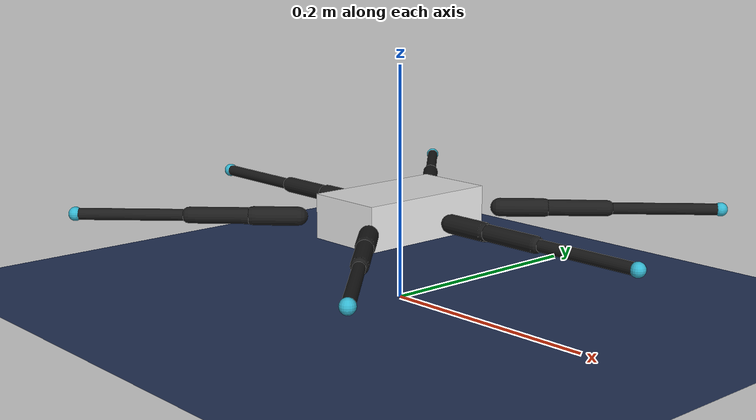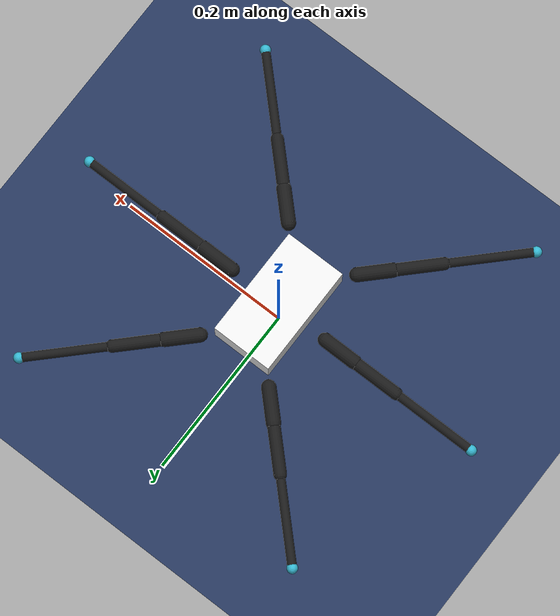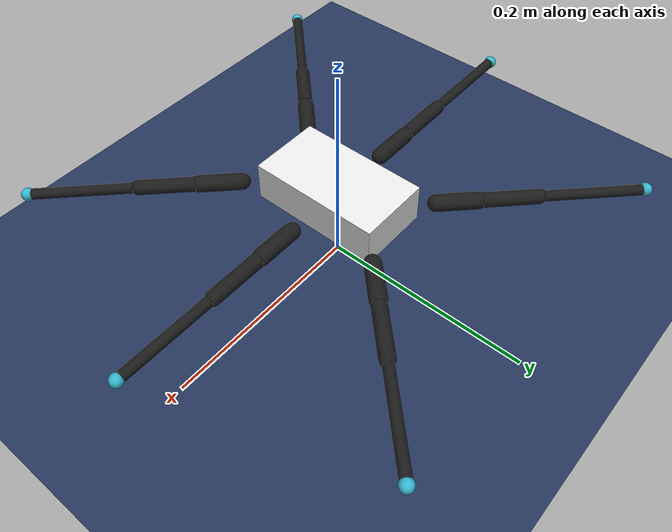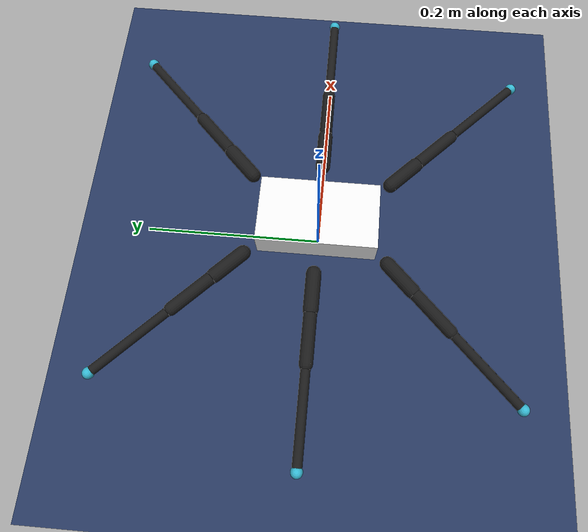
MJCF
<mujoco model="hexapod">
  <compiler angle="radian" meshdir="stl" autolimits="true"/>
  <option timestep="0.002" iterations="10" solver="Newton" cone="elliptic" integrator="implicitfast">
    <flag eulerdamp="disable"/>
  </option>

  <default>
    <geom solref="0.01 1" solimp="0.9 0.95 0.001"/>
  </default>

  <visual>
    <headlight diffuse="0.6 0.6 0.6" ambient="0.3 0.3 0.3"/>
    <global azimuth="120" elevation="-20"/>
  </visual>

  <asset>
    <texture name="grid" type="2d" builtin="checker" rgb1="0.18 0.26 0.42" rgb2="0.10 0.15 0.28"
             width="512" height="512"/>
    <material name="grid" texture="grid" texuniform="true" texrepeat="14 14" reflectance="0.35"/>
  </asset>

  <worldbody>
    <light pos="0 0 2" dir="0 0 -1" diffuse="0.8 0.8 0.8"/>
    <geom name="ground" type="plane" material="grid" size="5 5 0.1"
          condim="3" friction="1.0 0.02 0.001" contype="1" conaffinity="6"/>

    <body name="base" pos="0 0 0.075">
      <freejoint name="root"/>
      <inertial pos="0 0 0" mass="0.218" diaginertia="5.344e-04 3.123e-04 8.173e-04"/>
      <geom name="chassis" type="box" size="0.035 0.063 0.019" rgba="0.9 0.9 0.9 1"
            contype="4" conaffinity="1"/>
      <site name="imu" pos="0 0 0" size="0.005"/>
      <body name="coxa_0" pos="0.04482 0.07482 0" euler="0 0 0.785398">
        <joint name="coxa_0" type="hinge" axis="0 0 1" range="-0.55 0.55"
               damping="0.02" frictionloss="0.005" armature="0.003"/>
        <inertial pos="0.01900 0 0" mass="0.01" diaginertia="6.667e-07 1.537e-06 1.537e-06"/>
        <geom name="link_coxa_0" type="capsule" fromto="0 0 0 0.03800 0 0" size="0.008"
              rgba="0.1 0.1 0.1 1" contype="4" conaffinity="1"/>
        <body name="femur_0" pos="0.03800 0 0">
          <joint name="femur_0" type="hinge" axis="0 -1 0" range="-1.571 1.571"
                 damping="0.02" frictionloss="0.005" armature="0.003"/>
          <inertial pos="0.02703 0 0" mass="0.042" diaginertia="1.575e-06 1.102e-05 1.102e-05"/>
          <geom name="link_femur_0" type="capsule" fromto="0 0 0 0.05406 0 0" size="0.007"
                rgba="0.1 0.1 0.1 1" contype="4" conaffinity="1"/>
          <body name="tibia_0" pos="0.05406 0 0">
            <joint name="tibia_0" type="hinge" axis="0 -1 0" range="-2.6 2.6"
                   damping="0.02" frictionloss="0.005" armature="0.003"/>
            <inertial pos="0.04850 0 0" mass="0.025" diaginertia="6.000e-07 1.990e-05 1.990e-05"/>
            <geom name="link_tibia_0" type="capsule" fromto="0 0 0 0.09700 0 0" size="0.005"
                  rgba="0.1 0.1 0.1 1" contype="4" conaffinity="1"/>
            <geom name="foot_0" type="sphere" pos="0.09700 0 0" size="0.006"
                  rgba="0.2 0.7 0.8 1" condim="3" friction="2.0 0.02 0.001" priority="1"
                  contype="2" conaffinity="1"/>
            <site name="foot_0" pos="0.09700 0 0" size="0.004"/>
          </body>
        </body>
      </body>
      <body name="coxa_1" pos="0.06103 0.00000 0" euler="0 0 0.000000">
        <joint name="coxa_1" type="hinge" axis="0 0 1" range="-0.55 0.55"
               damping="0.02" frictionloss="0.005" armature="0.003"/>
        <inertial pos="0.01900 0 0" mass="0.01" diaginertia="6.667e-07 1.537e-06 1.537e-06"/>
        <geom name="link_coxa_1" type="capsule" fromto="0 0 0 0.03800 0 0" size="0.008"
              rgba="0.1 0.1 0.1 1" contype="4" conaffinity="1"/>
        <body name="femur_1" pos="0.03800 0 0">
          <joint name="femur_1" type="hinge" axis="0 -1 0" range="-1.571 1.571"
                 damping="0.02" frictionloss="0.005" armature="0.003"/>
          <inertial pos="0.02703 0 0" mass="0.042" diaginertia="1.575e-06 1.102e-05 1.102e-05"/>
          <geom name="link_femur_1" type="capsule" fromto="0 0 0 0.05406 0 0" size="0.007"
                rgba="0.1 0.1 0.1 1" contype="4" conaffinity="1"/>
          <body name="tibia_1" pos="0.05406 0 0">
            <joint name="tibia_1" type="hinge" axis="0 -1 0" range="-2.6 2.6"
                   damping="0.02" frictionloss="0.005" armature="0.003"/>
            <inertial pos="0.04850 0 0" mass="0.025" diaginertia="6.000e-07 1.990e-05 1.990e-05"/>
            <geom name="link_tibia_1" type="capsule" fromto="0 0 0 0.09700 0 0" size="0.005"
                  rgba="0.1 0.1 0.1 1" contype="4" conaffinity="1"/>
            <geom name="foot_1" type="sphere" pos="0.09700 0 0" size="0.006"
                  rgba="0.2 0.7 0.8 1" condim="3" friction="2.0 0.02 0.001" priority="1"
                  contype="2" conaffinity="1"/>
            <site name="foot_1" pos="0.09700 0 0" size="0.004"/>
          </body>
        </body>
      </body>
      <body name="coxa_2" pos="0.04482 -0.07482 0" euler="0 0 -0.785398">
        <joint name="coxa_2" type="hinge" axis="0 0 1" range="-0.55 0.55"
               damping="0.02" frictionloss="0.005" armature="0.003"/>
        <inertial pos="0.01900 0 0" mass="0.01" diaginertia="6.667e-07 1.537e-06 1.537e-06"/>
        <geom name="link_coxa_2" type="capsule" fromto="0 0 0 0.03800 0 0" size="0.008"
              rgba="0.1 0.1 0.1 1" contype="4" conaffinity="1"/>
        <body name="femur_2" pos="0.03800 0 0">
          <joint name="femur_2" type="hinge" axis="0 -1 0" range="-1.571 1.571"
                 damping="0.02" frictionloss="0.005" armature="0.003"/>
          <inertial pos="0.02703 0 0" mass="0.042" diaginertia="1.575e-06 1.102e-05 1.102e-05"/>
          <geom name="link_femur_2" type="capsule" fromto="0 0 0 0.05406 0 0" size="0.007"
                rgba="0.1 0.1 0.1 1" contype="4" conaffinity="1"/>
          <body name="tibia_2" pos="0.05406 0 0">
            <joint name="tibia_2" type="hinge" axis="0 -1 0" range="-2.6 2.6"
                   damping="0.02" frictionloss="0.005" armature="0.003"/>
            <inertial pos="0.04850 0 0" mass="0.025" diaginertia="6.000e-07 1.990e-05 1.990e-05"/>
            <geom name="link_tibia_2" type="capsule" fromto="0 0 0 0.09700 0 0" size="0.005"
                  rgba="0.1 0.1 0.1 1" contype="4" conaffinity="1"/>
            <geom name="foot_2" type="sphere" pos="0.09700 0 0" size="0.006"
                  rgba="0.2 0.7 0.8 1" condim="3" friction="2.0 0.02 0.001" priority="1"
                  contype="2" conaffinity="1"/>
            <site name="foot_2" pos="0.09700 0 0" size="0.004"/>
          </body>
        </body>
      </body>
      <body name="coxa_3" pos="-0.04482 0.07482 0" euler="0 0 -3.926991">
        <joint name="coxa_3" type="hinge" axis="0 0 1" range="-0.55 0.55"
               damping="0.02" frictionloss="0.005" armature="0.003"/>
        <inertial pos="0.01900 0 0" mass="0.01" diaginertia="6.667e-07 1.537e-06 1.537e-06"/>
        <geom name="link_coxa_3" type="capsule" fromto="0 0 0 0.03800 0 0" size="0.008"
              rgba="0.1 0.1 0.1 1" contype="4" conaffinity="1"/>
        <body name="femur_3" pos="0.03800 0 0">
          <joint name="femur_3" type="hinge" axis="0 -1 0" range="-1.571 1.571"
                 damping="0.02" frictionloss="0.005" armature="0.003"/>
          <inertial pos="0.02703 0 0" mass="0.042" diaginertia="1.575e-06 1.102e-05 1.102e-05"/>
          <geom name="link_femur_3" type="capsule" fromto="0 0 0 0.05406 0 0" size="0.007"
                rgba="0.1 0.1 0.1 1" contype="4" conaffinity="1"/>
          <body name="tibia_3" pos="0.05406 0 0">
            <joint name="tibia_3" type="hinge" axis="0 -1 0" range="-2.6 2.6"
                   damping="0.02" frictionloss="0.005" armature="0.003"/>
            <inertial pos="0.04850 0 0" mass="0.025" diaginertia="6.000e-07 1.990e-05 1.990e-05"/>
            <geom name="link_tibia_3" type="capsule" fromto="0 0 0 0.09700 0 0" size="0.005"
                  rgba="0.1 0.1 0.1 1" contype="4" conaffinity="1"/>
            <geom name="foot_3" type="sphere" pos="0.09700 0 0" size="0.006"
                  rgba="0.2 0.7 0.8 1" condim="3" friction="2.0 0.02 0.001" priority="1"
                  contype="2" conaffinity="1"/>
            <site name="foot_3" pos="0.09700 0 0" size="0.004"/>
          </body>
        </body>
      </body>
      <body name="coxa_4" pos="-0.06103 0.00000 0" euler="0 0 -3.141593">
        <joint name="coxa_4" type="hinge" axis="0 0 1" range="-0.55 0.55"
               damping="0.02" frictionloss="0.005" armature="0.003"/>
        <inertial pos="0.01900 0 0" mass="0.01" diaginertia="6.667e-07 1.537e-06 1.537e-06"/>
        <geom name="link_coxa_4" type="capsule" fromto="0 0 0 0.03800 0 0" size="0.008"
              rgba="0.1 0.1 0.1 1" contype="4" conaffinity="1"/>
        <body name="femur_4" pos="0.03800 0 0">
          <joint name="femur_4" type="hinge" axis="0 -1 0" range="-1.571 1.571"
                 damping="0.02" frictionloss="0.005" armature="0.003"/>
          <inertial pos="0.02703 0 0" mass="0.042" diaginertia="1.575e-06 1.102e-05 1.102e-05"/>
          <geom name="link_femur_4" type="capsule" fromto="0 0 0 0.05406 0 0" size="0.007"
                rgba="0.1 0.1 0.1 1" contype="4" conaffinity="1"/>
          <body name="tibia_4" pos="0.05406 0 0">
            <joint name="tibia_4" type="hinge" axis="0 -1 0" range="-2.6 2.6"
                   damping="0.02" frictionloss="0.005" armature="0.003"/>
            <inertial pos="0.04850 0 0" mass="0.025" diaginertia="6.000e-07 1.990e-05 1.990e-05"/>
            <geom name="link_tibia_4" type="capsule" fromto="0 0 0 0.09700 0 0" size="0.005"
                  rgba="0.1 0.1 0.1 1" contype="4" conaffinity="1"/>
            <geom name="foot_4" type="sphere" pos="0.09700 0 0" size="0.006"
                  rgba="0.2 0.7 0.8 1" condim="3" friction="2.0 0.02 0.001" priority="1"
                  contype="2" conaffinity="1"/>
            <site name="foot_4" pos="0.09700 0 0" size="0.004"/>
          </body>
        </body>
      </body>
      <body name="coxa_5" pos="-0.04482 -0.07482 0" euler="0 0 -2.356194">
        <joint name="coxa_5" type="hinge" axis="0 0 1" range="-0.55 0.55"
               damping="0.02" frictionloss="0.005" armature="0.003"/>
        <inertial pos="0.01900 0 0" mass="0.01" diaginertia="6.667e-07 1.537e-06 1.537e-06"/>
        <geom name="link_coxa_5" type="capsule" fromto="0 0 0 0.03800 0 0" size="0.008"
              rgba="0.1 0.1 0.1 1" contype="4" conaffinity="1"/>
        <body name="femur_5" pos="0.03800 0 0">
          <joint name="femur_5" type="hinge" axis="0 -1 0" range="-1.571 1.571"
                 damping="0.02" frictionloss="0.005" armature="0.003"/>
          <inertial pos="0.02703 0 0" mass="0.042" diaginertia="1.575e-06 1.102e-05 1.102e-05"/>
          <geom name="link_femur_5" type="capsule" fromto="0 0 0 0.05406 0 0" size="0.007"
                rgba="0.1 0.1 0.1 1" contype="4" conaffinity="1"/>
          <body name="tibia_5" pos="0.05406 0 0">
            <joint name="tibia_5" type="hinge" axis="0 -1 0" range="-2.6 2.6"
                   damping="0.02" frictionloss="0.005" armature="0.003"/>
            <inertial pos="0.04850 0 0" mass="0.025" diaginertia="6.000e-07 1.990e-05 1.990e-05"/>
            <geom name="link_tibia_5" type="capsule" fromto="0 0 0 0.09700 0 0" size="0.005"
                  rgba="0.1 0.1 0.1 1" contype="4" conaffinity="1"/>
            <geom name="foot_5" type="sphere" pos="0.09700 0 0" size="0.006"
                  rgba="0.2 0.7 0.8 1" condim="3" friction="2.0 0.02 0.001" priority="1"
                  contype="2" conaffinity="1"/>
            <site name="foot_5" pos="0.09700 0 0" size="0.004"/>
          </body>
        </body>
      </body>
    </body>
  </worldbody>

  <actuator>
    <motor name="coxa_0" joint="coxa_0" ctrlrange="-0.9 0.9" gear="1"/>
    <motor name="femur_0" joint="femur_0" ctrlrange="-0.9 0.9" gear="1"/>
    <motor name="tibia_0" joint="tibia_0" ctrlrange="-0.9 0.9" gear="1"/>
    <motor name="coxa_1" joint="coxa_1" ctrlrange="-0.9 0.9" gear="1"/>
    <motor name="femur_1" joint="femur_1" ctrlrange="-0.9 0.9" gear="1"/>
    <motor name="tibia_1" joint="tibia_1" ctrlrange="-0.9 0.9" gear="1"/>
    <motor name="coxa_2" joint="coxa_2" ctrlrange="-0.9 0.9" gear="1"/>
    <motor name="femur_2" joint="femur_2" ctrlrange="-0.9 0.9" gear="1"/>
    <motor name="tibia_2" joint="tibia_2" ctrlrange="-0.9 0.9" gear="1"/>
    <motor name="coxa_3" joint="coxa_3" ctrlrange="-0.9 0.9" gear="1"/>
    <motor name="femur_3" joint="femur_3" ctrlrange="-0.9 0.9" gear="1"/>
    <motor name="tibia_3" joint="tibia_3" ctrlrange="-0.9 0.9" gear="1"/>
    <motor name="coxa_4" joint="coxa_4" ctrlrange="-0.9 0.9" gear="1"/>
    <motor name="femur_4" joint="femur_4" ctrlrange="-0.9 0.9" gear="1"/>
    <motor name="tibia_4" joint="tibia_4" ctrlrange="-0.9 0.9" gear="1"/>
    <motor name="coxa_5" joint="coxa_5" ctrlrange="-0.9 0.9" gear="1"/>
    <motor name="femur_5" joint="femur_5" ctrlrange="-0.9 0.9" gear="1"/>
    <motor name="tibia_5" joint="tibia_5" ctrlrange="-0.9 0.9" gear="1"/>
  </actuator>

  <sensor>
    <framequat name="imu_quat" objtype="site" objname="imu"/>
    <gyro name="imu_gyro" site="imu"/>
    <accelerometer name="imu_acc" site="imu"/>
  </sensor>
</mujoco>
